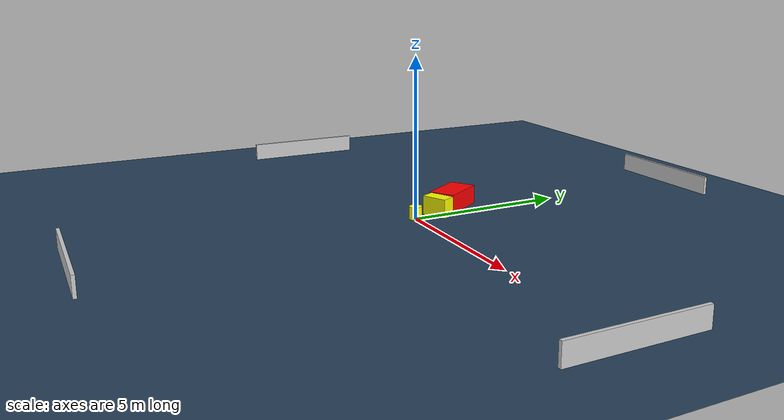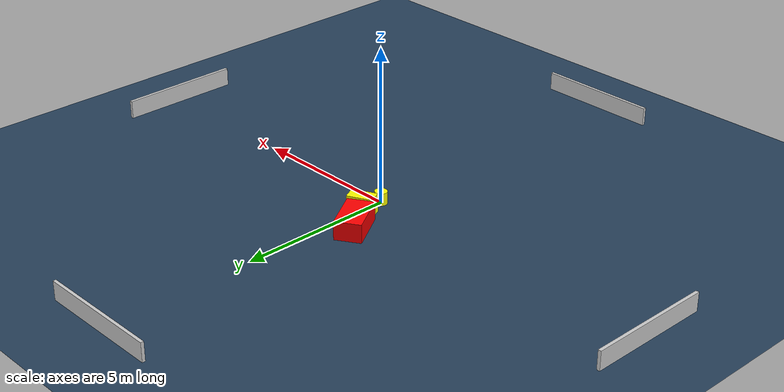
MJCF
<?xml version="1.0" ?>
<mujoco model="generated_environment">
  <option timestep="0.01" integrator="RK4" cone="elliptic"/>
  <default>
    <geom density="1"/>
  </default>
  <asset>
    <texture builtin="gradient" height="3072" name="skybox" rgb1="0.3 0.5 0.7" rgb2="0 0 0" type="skybox" width="512"/>
    <texture builtin="checker" height="300" name="groundplane" rgb1="0.2 0.3 0.4" rgb2="0.1 0.2 0.3" type="2d" width="300"/>
    <material name="groundplane" reflectance="0.2" texrepeat="5 5" texture="groundplane"/>
  </asset>
  <worldbody>
    <light dir="0 0 -1" directional="true" pos="0 0 1.5"/>
    <geom condim="3" friction="0.5 0.005 0.001" material="groundplane" name="floor" pos="0 0 0" size="0 0 0.05" type="plane"/>
    <body name="walls">
      <geom name="wall_1" condim="4" pos="-10.0 0.0 0.3" rgba="0.800000011920929 0.800000011920929 0.800000011920929 1.0" size="0.05 2.0 0.3" type="box"/>
      <geom name="wall_2" condim="4" pos="10.0 0.0 0.3" rgba="0.800000011920929 0.800000011920929 0.800000011920929 1.0" size="0.05 2.0 0.3" type="box"/>
      <geom name="wall_3" condim="4" pos="0.0 -10.0 0.3" rgba="0.800000011920929 0.800000011920929 0.800000011920929 1.0" size="2.0 0.05 0.3" type="box"/>
      <geom name="wall_4" condim="4" pos="0.0 10.0 0.3" rgba="0.800000011920929 0.800000011920929 0.800000011920929 1.0" size="2.0 0.05 0.3" type="box"/>
    </body>
    <body name="robot">
      <joint name="joint_x" type="slide" pos="0 0 0" axis="1 0 0"/>
      <joint name="joint_y" type="slide" pos="0 0 0" axis="0 1 0"/>
      <geom name="robot" type="cylinder" pos="0.0 0.0 0.2" size="0.2 0.2 0.0" mass="5.0" friction="1.0 0.005 0.0001" condim="4" rgba="1.0 1.0 0.0 1.0"/>
    </body>
    <body name="obstacle_1_movable">
      <geom name="obstacle_1_movable" condim="4" pos="-0.051113725483748915 0.8108802408162566 0.3" euler="0 0 115.83514809015789" friction="0.0 0.005 0.001" rgba="1.0 1.0 0.0 1.0" size="0.22922567249023978 0.4109440182612851 0.3" type="box" mass="0.1"/>
      <joint type="free"/>
    </body>
    <body name="obstacle_2_static">
      <geom name="obstacle_2_static" condim="4" pos="-0.6537888437963729 1.667127712769051 0.3" euler="0 0 31.886566694821127" friction="0.0 0.005 0.001" rgba="1.0 0.0 0.0 1.0" size="0.41966014201565266 0.7183923809199517 0.3" type="box"/>
    </body>
  </worldbody>
  <actuator>
    <motor name="actuator_x" joint="joint_x" gear="1" ctrlrange="-1 1"/>
    <motor name="actuator_y" joint="joint_y" gear="1" ctrlrange="-1 1"/>
  </actuator>
</mujoco>
